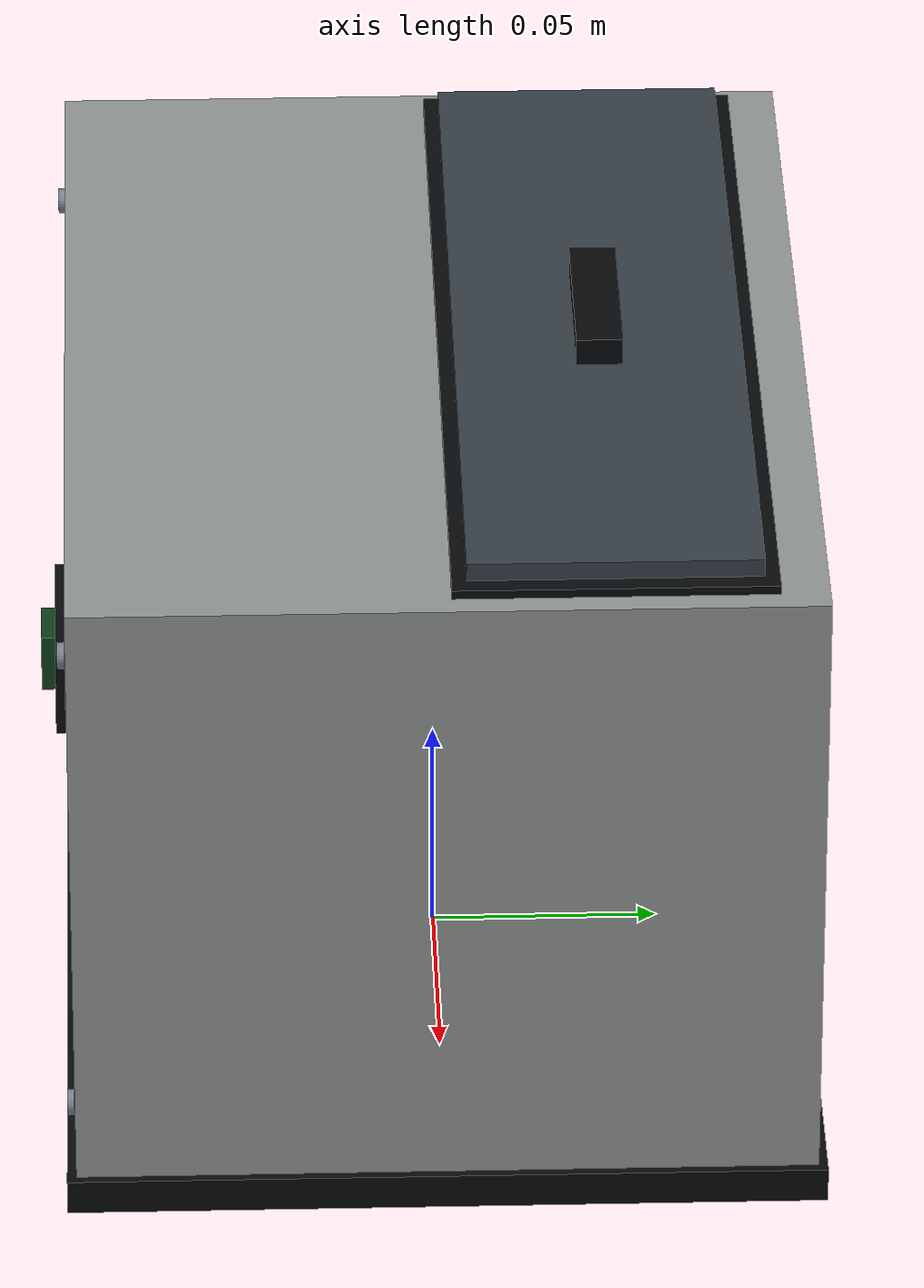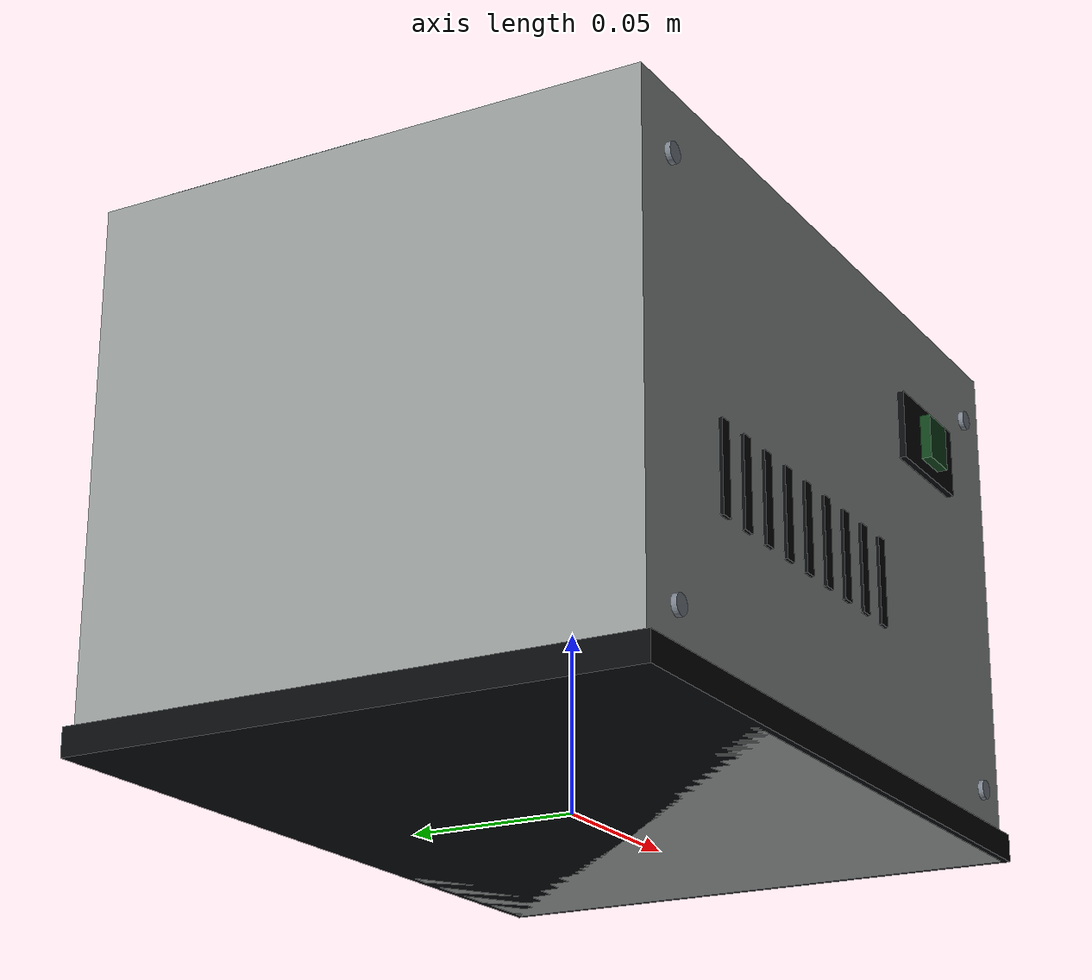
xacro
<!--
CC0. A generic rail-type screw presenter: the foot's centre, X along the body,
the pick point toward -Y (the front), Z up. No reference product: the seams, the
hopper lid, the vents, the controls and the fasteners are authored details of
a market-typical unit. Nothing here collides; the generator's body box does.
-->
<?xml version="1.0"?>
<robot xmlns:xacro="http://www.ros.org/wiki/xacro" name="screw-presenter-body">
  <xacro:include filename="../../equipment-common/visual/primitives.xacro"/>
  <xacro:arg name="length" default="0.22"/><xacro:arg name="width" default="0.16"/>
  <xacro:arg name="height" default="0.15"/>
  <xacro:property name="l" value="$(arg length)"/><xacro:property name="w" value="$(arg width)"/>
  <xacro:property name="h" value="$(arg height)"/>
  <material name="sheet"><color rgba="0.57 0.59 0.58 1"/></material>
  <material name="dark"><color rgba="0.025 0.032 0.040 1"/></material>
  <material name="lid"><color rgba="0.21 0.25 0.28 1"/></material>
  <material name="switch"><color rgba="0.06 0.25 0.10 1"/></material>
  <material name="steel"><color rgba="0.48 0.51 0.55 1"/></material>
  <link name="root"/>
  <xacro:box name="shell" size="${l} ${w} ${h}" xyz="0 0 ${h/2}" mat="sheet"/>
  <xacro:box name="base" size="${l + 0.004} ${w + 0.004} 0.008" xyz="0 0 0.004" mat="dark"/>
  <!-- The hopper lid over the rear of the top, its seam and a grip. -->
  <xacro:box name="lid_seam" size="${l - 0.010} ${w * 0.43} 0.002" xyz="0 ${w * 0.22} ${h + 0.001}" mat="dark"/>
  <xacro:box name="hopper_lid" size="${l - 0.018} ${w * 0.39} 0.004" xyz="0 ${w * 0.22} ${h + 0.004}" mat="lid"/>
  <xacro:box name="handle" size="0.040 0.010 0.006" xyz="0 ${w * 0.22} ${h + 0.009}" mat="dark"/>
  <!-- Ventilation slots and fasteners on the front, the control bezel and its switch. -->
  <xacro:macro name="vent" params="i">
    <xacro:box name="vent_${i}" size="0.004 0.001 0.025" xyz="${-0.070 + i * 0.012} ${-w/2 - 0.0006} ${h * 0.40}" mat="dark"/>
  </xacro:macro>
  <xacro:vent i="0"/><xacro:vent i="1"/><xacro:vent i="2"/><xacro:vent i="3"/><xacro:vent i="4"/>
  <xacro:vent i="5"/><xacro:vent i="6"/><xacro:vent i="7"/><xacro:vent i="8"/>
  <xacro:macro name="fastener" params="i sx z">
    <xacro:cylinder name="fastener_${i}" radius="0.0028" length="0.0015" xyz="${sx * (l/2 - 0.014)} ${-w/2 - 0.001} ${z}" rpy="${pi/2} 0 0" mat="steel"/>
  </xacro:macro>
  <xacro:fastener i="0" sx="-1" z="0.018"/><xacro:fastener i="1" sx="-1" z="${h - 0.018}"/>
  <xacro:fastener i="2" sx="1" z="0.018"/><xacro:fastener i="3" sx="1" z="${h - 0.018}"/>
  <xacro:box name="control_bezel" size="0.036 0.002 0.020" xyz="${l * 0.28} ${-w/2 - 0.0015} ${h - 0.038}" mat="dark"/>
  <xacro:box name="power_switch" size="0.012 0.003 0.013" xyz="${l * 0.28} ${-w/2 - 0.004} ${h - 0.038}" mat="switch"/>
</robot>

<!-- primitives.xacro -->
<!-- CC0. Visual-only primitives, each with a stable removable resident name. -->
<robot xmlns:xacro="http://www.ros.org/wiki/xacro">
  <xacro:macro name="box" params="name size xyz mat">
    <link name="${name}"><visual><origin xyz="${xyz}"/>
      <geometry><box size="${size}"/></geometry><material name="${mat}"/>
    </visual></link>
    <joint name="j_${name}" type="fixed"><parent link="root"/><child link="${name}"/></joint>
  </xacro:macro>
  <xacro:macro name="cylinder" params="name radius length xyz rpy mat">
    <link name="${name}"><visual><origin xyz="${xyz}" rpy="${rpy}"/>
      <geometry><cylinder radius="${radius}" length="${length}"/></geometry><material name="${mat}"/>
    </visual></link>
    <joint name="j_${name}" type="fixed"><parent link="root"/><child link="${name}"/></joint>
  </xacro:macro>
  <xacro:macro name="mesh" params="name file xyz mat">
    <link name="${name}"><visual><origin xyz="${xyz}"/>
      <geometry><mesh filename="${file}"/></geometry><material name="${mat}"/>
    </visual></link>
    <joint name="j_${name}" type="fixed"><parent link="root"/><child link="${name}"/></joint>
  </xacro:macro>
</robot>
